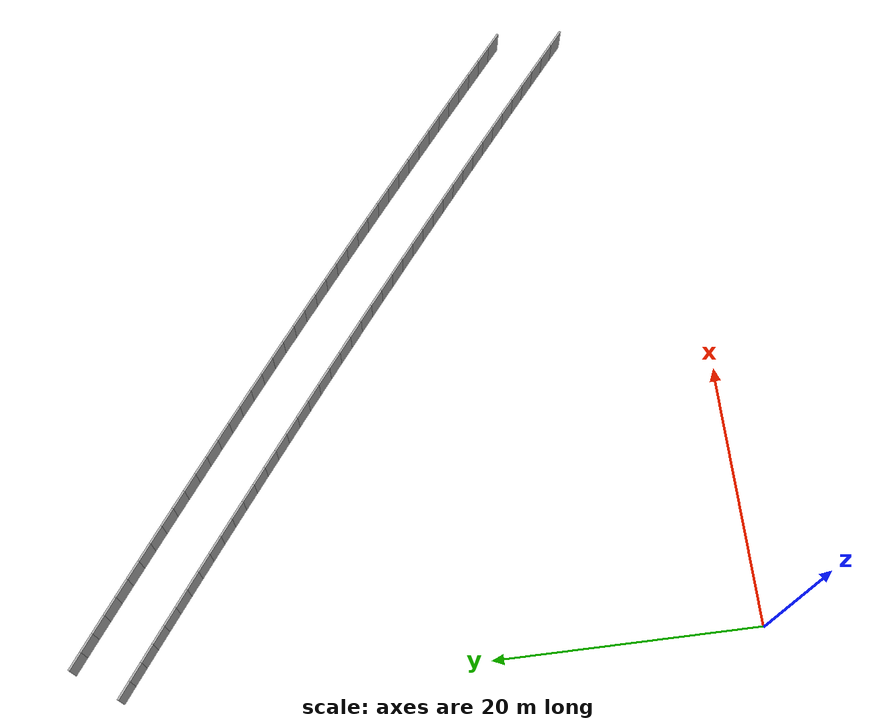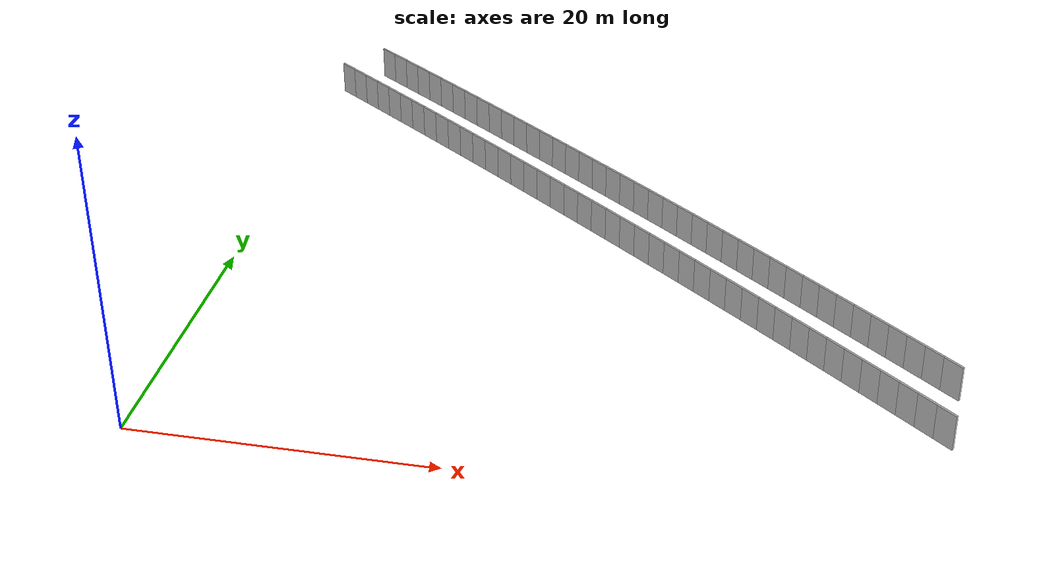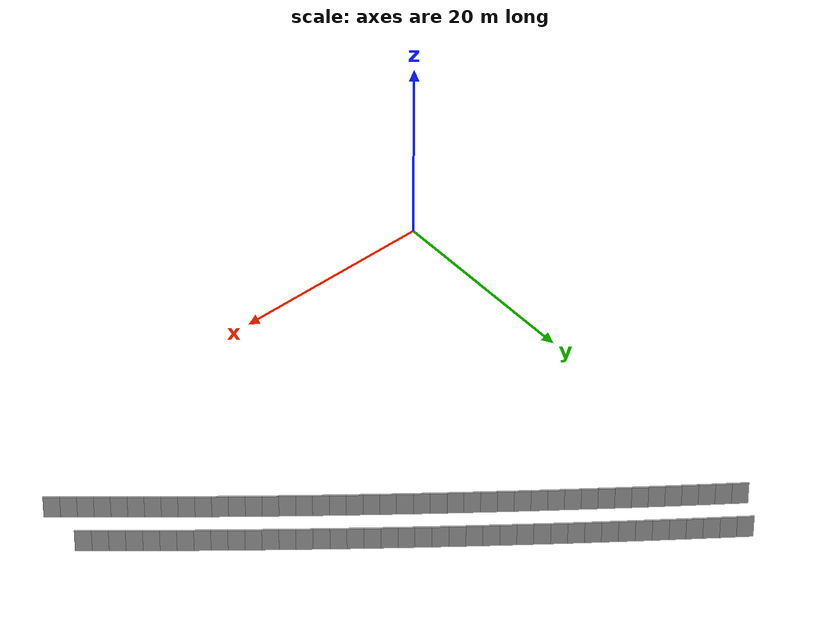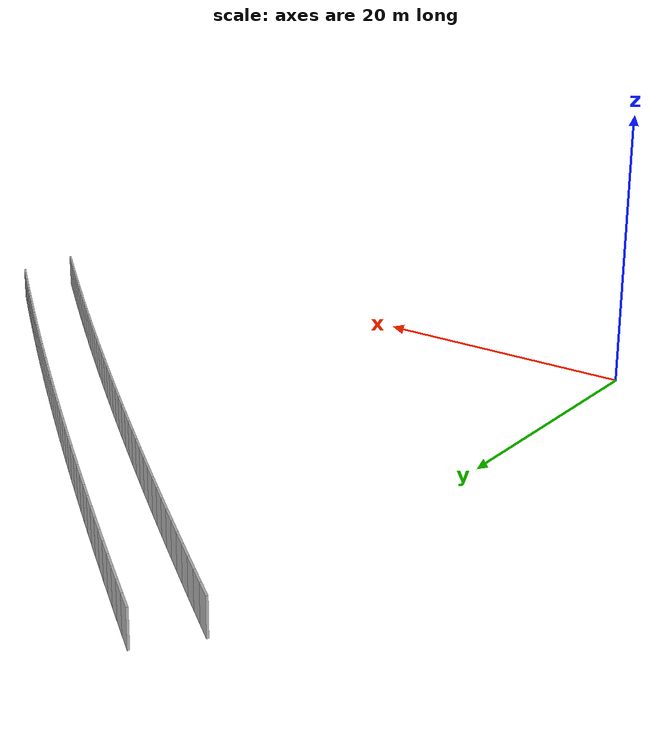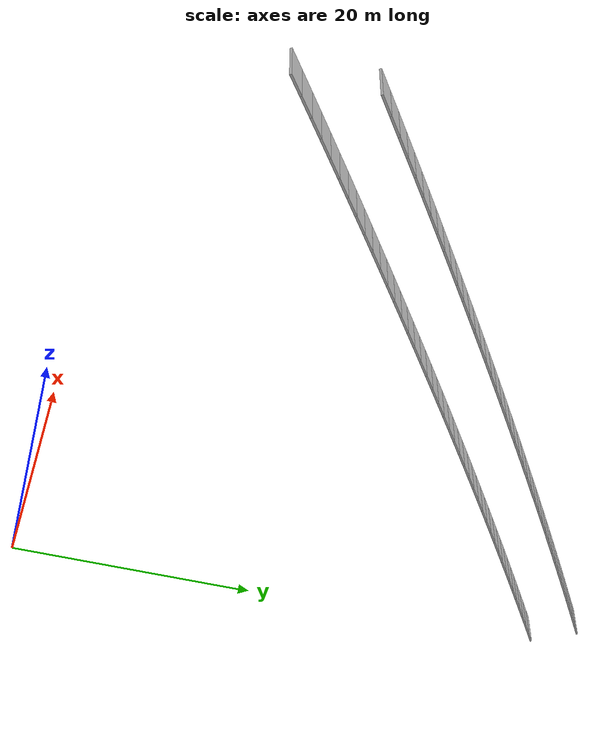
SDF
<?xml version="1.0" ?>
<sdf version="1.6">
  <model name="sps_3842">
    <pose frame="">0 0 0 0 -0 0</pose>
    <static>1</static>
    <self_collide>0</self_collide>
    <allow_auto_disable>0</allow_auto_disable>
    <link name="Wall10471">
      <kinematic>0</kinematic>
      <gravity>1</gravity>
      <self_collide>0</self_collide>
      <collision name="collision">
        <geometry>
          <box>
            <size>1.49663 0.15 2.5</size>
          </box>
        </geometry>
        <pose frame="">0 0 0 0 -0 0</pose>
      </collision>
      <visual name="visual">
        <geometry>
          <box>
            <size>1.49663 0.15 2.5</size>
          </box>
        </geometry>
        <pose frame="">0 0 0 0 -0 0</pose>
        <cast_shadows>1</cast_shadows>
        <transparency>0.0</transparency>
      </visual>
      <pose frame="">48.906 8.1053 1.25 0 -0 2.44067</pose>
    </link>
    <link name="Wall10472">
      <kinematic>0</kinematic>
      <gravity>1</gravity>
      <self_collide>0</self_collide>
      <collision name="collision">
        <geometry>
          <box>
            <size>1.49655 0.15 2.5</size>
          </box>
        </geometry>
        <pose frame="">0 0 0 0 -0 0</pose>
      </collision>
      <visual name="visual">
        <geometry>
          <box>
            <size>1.49655 0.15 2.5</size>
          </box>
        </geometry>
        <pose frame="">0 0 0 0 -0 0</pose>
        <cast_shadows>1</cast_shadows>
        <transparency>0.0</transparency>
      </visual>
      <pose frame="">47.7614 9.0695 1.25 0 -0 2.44238</pose>
    </link>
    <link name="Wall10473">
      <kinematic>0</kinematic>
      <gravity>1</gravity>
      <self_collide>0</self_collide>
      <collision name="collision">
        <geometry>
          <box>
            <size>1.49649 0.15 2.5</size>
          </box>
        </geometry>
        <pose frame="">0 0 0 0 -0 0</pose>
      </collision>
      <visual name="visual">
        <geometry>
          <box>
            <size>1.49649 0.15 2.5</size>
          </box>
        </geometry>
        <pose frame="">0 0 0 0 -0 0</pose>
        <cast_shadows>1</cast_shadows>
        <transparency>0.0</transparency>
      </visual>
      <pose frame="">46.6153 10.0318 1.25 0 -0 2.44395</pose>
    </link>
    <link name="Wall10474">
      <kinematic>0</kinematic>
      <gravity>1</gravity>
      <self_collide>0</self_collide>
      <collision name="collision">
        <geometry>
          <box>
            <size>1.49642 0.15 2.5</size>
          </box>
        </geometry>
        <pose frame="">0 0 0 0 -0 0</pose>
      </collision>
      <visual name="visual">
        <geometry>
          <box>
            <size>1.49642 0.15 2.5</size>
          </box>
        </geometry>
        <pose frame="">0 0 0 0 -0 0</pose>
        <cast_shadows>1</cast_shadows>
        <transparency>0.0</transparency>
      </visual>
      <pose frame="">45.4677 10.9923 1.25 0 -0 2.4454</pose>
    </link>
    <link name="Wall10475">
      <kinematic>0</kinematic>
      <gravity>1</gravity>
      <self_collide>0</self_collide>
      <collision name="collision">
        <geometry>
          <box>
            <size>1.49657 0.15 2.5</size>
          </box>
        </geometry>
        <pose frame="">0 0 0 0 -0 0</pose>
      </collision>
      <visual name="visual">
        <geometry>
          <box>
            <size>1.49657 0.15 2.5</size>
          </box>
        </geometry>
        <pose frame="">0 0 0 0 -0 0</pose>
        <cast_shadows>1</cast_shadows>
        <transparency>0.0</transparency>
      </visual>
      <pose frame="">44.3187 11.951 1.25 0 -0 2.44713</pose>
    </link>
    <link name="Wall10476">
      <kinematic>0</kinematic>
      <gravity>1</gravity>
      <self_collide>0</self_collide>
      <collision name="collision">
        <geometry>
          <box>
            <size>1.49657 0.15 2.5</size>
          </box>
        </geometry>
        <pose frame="">0 0 0 0 -0 0</pose>
      </collision>
      <visual name="visual">
        <geometry>
          <box>
            <size>1.49657 0.15 2.5</size>
          </box>
        </geometry>
        <pose frame="">0 0 0 0 -0 0</pose>
        <cast_shadows>1</cast_shadows>
        <transparency>0.0</transparency>
      </visual>
      <pose frame="">43.168 12.9079 1.25 0 -0 2.44867</pose>
    </link>
    <link name="Wall10477">
      <kinematic>0</kinematic>
      <gravity>1</gravity>
      <self_collide>0</self_collide>
      <collision name="collision">
        <geometry>
          <box>
            <size>1.49647 0.15 2.5</size>
          </box>
        </geometry>
        <pose frame="">0 0 0 0 -0 0</pose>
      </collision>
      <visual name="visual">
        <geometry>
          <box>
            <size>1.49647 0.15 2.5</size>
          </box>
        </geometry>
        <pose frame="">0 0 0 0 -0 0</pose>
        <cast_shadows>1</cast_shadows>
        <transparency>0.0</transparency>
      </visual>
      <pose frame="">42.0159 13.863 1.25 0 -0 2.45015</pose>
    </link>
    <link name="Wall10478">
      <kinematic>0</kinematic>
      <gravity>1</gravity>
      <self_collide>0</self_collide>
      <collision name="collision">
        <geometry>
          <box>
            <size>1.49657 0.15 2.5</size>
          </box>
        </geometry>
        <pose frame="">0 0 0 0 -0 0</pose>
      </collision>
      <visual name="visual">
        <geometry>
          <box>
            <size>1.49657 0.15 2.5</size>
          </box>
        </geometry>
        <pose frame="">0 0 0 0 -0 0</pose>
        <cast_shadows>1</cast_shadows>
        <transparency>0.0</transparency>
      </visual>
      <pose frame="">40.8623 14.8163 1.25 0 -0 2.45179</pose>
    </link>
    <link name="Wall10479">
      <kinematic>0</kinematic>
      <gravity>1</gravity>
      <self_collide>0</self_collide>
      <collision name="collision">
        <geometry>
          <box>
            <size>1.49653 0.15 2.5</size>
          </box>
        </geometry>
        <pose frame="">0 0 0 0 -0 0</pose>
      </collision>
      <visual name="visual">
        <geometry>
          <box>
            <size>1.49653 0.15 2.5</size>
          </box>
        </geometry>
        <pose frame="">0 0 0 0 -0 0</pose>
        <cast_shadows>1</cast_shadows>
        <transparency>0.0</transparency>
      </visual>
      <pose frame="">39.7071 15.7678 1.25 0 -0 2.4533</pose>
    </link>
    <link name="Wall10480">
      <kinematic>0</kinematic>
      <gravity>1</gravity>
      <self_collide>0</self_collide>
      <collision name="collision">
        <geometry>
          <box>
            <size>1.49655 0.15 2.5</size>
          </box>
        </geometry>
        <pose frame="">0 0 0 0 -0 0</pose>
      </collision>
      <visual name="visual">
        <geometry>
          <box>
            <size>1.49655 0.15 2.5</size>
          </box>
        </geometry>
        <pose frame="">0 0 0 0 -0 0</pose>
        <cast_shadows>1</cast_shadows>
        <transparency>0.0</transparency>
      </visual>
      <pose frame="">38.5506 16.7175 1.25 0 -0 2.4549</pose>
    </link>
    <link name="Wall10481">
      <kinematic>0</kinematic>
      <gravity>1</gravity>
      <self_collide>0</self_collide>
      <collision name="collision">
        <geometry>
          <box>
            <size>1.49641 0.15 2.5</size>
          </box>
        </geometry>
        <pose frame="">0 0 0 0 -0 0</pose>
      </collision>
      <visual name="visual">
        <geometry>
          <box>
            <size>1.49641 0.15 2.5</size>
          </box>
        </geometry>
        <pose frame="">0 0 0 0 -0 0</pose>
        <cast_shadows>1</cast_shadows>
        <transparency>0.0</transparency>
      </visual>
      <pose frame="">37.3925 17.6653 1.25 0 -0 2.45656</pose>
    </link>
    <link name="Wall10482">
      <kinematic>0</kinematic>
      <gravity>1</gravity>
      <self_collide>0</self_collide>
      <collision name="collision">
        <geometry>
          <box>
            <size>1.49652 0.15 2.5</size>
          </box>
        </geometry>
        <pose frame="">0 0 0 0 -0 0</pose>
      </collision>
      <visual name="visual">
        <geometry>
          <box>
            <size>1.49652 0.15 2.5</size>
          </box>
        </geometry>
        <pose frame="">0 0 0 0 -0 0</pose>
        <cast_shadows>1</cast_shadows>
        <transparency>0.0</transparency>
      </visual>
      <pose frame="">36.2329 18.6112 1.25 0 -0 2.45814</pose>
    </link>
    <link name="Wall10483">
      <kinematic>0</kinematic>
      <gravity>1</gravity>
      <self_collide>0</self_collide>
      <collision name="collision">
        <geometry>
          <box>
            <size>1.49659 0.15 2.5</size>
          </box>
        </geometry>
        <pose frame="">0 0 0 0 -0 0</pose>
      </collision>
      <visual name="visual">
        <geometry>
          <box>
            <size>1.49659 0.15 2.5</size>
          </box>
        </geometry>
        <pose frame="">0 0 0 0 -0 0</pose>
        <cast_shadows>1</cast_shadows>
        <transparency>0.0</transparency>
      </visual>
      <pose frame="">35.0717 19.5553 1.25 0 -0 2.45976</pose>
    </link>
    <link name="Wall10484">
      <kinematic>0</kinematic>
      <gravity>1</gravity>
      <self_collide>0</self_collide>
      <collision name="collision">
        <geometry>
          <box>
            <size>1.4965 0.15 2.5</size>
          </box>
        </geometry>
        <pose frame="">0 0 0 0 -0 0</pose>
      </collision>
      <visual name="visual">
        <geometry>
          <box>
            <size>1.4965 0.15 2.5</size>
          </box>
        </geometry>
        <pose frame="">0 0 0 0 -0 0</pose>
        <cast_shadows>1</cast_shadows>
        <transparency>0.0</transparency>
      </visual>
      <pose frame="">33.909 20.4975 1.25 0 -0 2.46139</pose>
    </link>
    <link name="Wall10485">
      <kinematic>0</kinematic>
      <gravity>1</gravity>
      <self_collide>0</self_collide>
      <collision name="collision">
        <geometry>
          <box>
            <size>1.49651 0.15 2.5</size>
          </box>
        </geometry>
        <pose frame="">0 0 0 0 -0 0</pose>
      </collision>
      <visual name="visual">
        <geometry>
          <box>
            <size>1.49651 0.15 2.5</size>
          </box>
        </geometry>
        <pose frame="">0 0 0 0 -0 0</pose>
        <cast_shadows>1</cast_shadows>
        <transparency>0.0</transparency>
      </visual>
      <pose frame="">32.7448 21.4379 1.25 0 -0 2.46281</pose>
    </link>
    <link name="Wall10486">
      <kinematic>0</kinematic>
      <gravity>1</gravity>
      <self_collide>0</self_collide>
      <collision name="collision">
        <geometry>
          <box>
            <size>1.49665 0.15 2.5</size>
          </box>
        </geometry>
        <pose frame="">0 0 0 0 -0 0</pose>
      </collision>
      <visual name="visual">
        <geometry>
          <box>
            <size>1.49665 0.15 2.5</size>
          </box>
        </geometry>
        <pose frame="">0 0 0 0 -0 0</pose>
        <cast_shadows>1</cast_shadows>
        <transparency>0.0</transparency>
      </visual>
      <pose frame="">31.5793 22.3767 1.25 0 -0 2.4642</pose>
    </link>
    <link name="Wall10487">
      <kinematic>0</kinematic>
      <gravity>1</gravity>
      <self_collide>0</self_collide>
      <collision name="collision">
        <geometry>
          <box>
            <size>1.49632 0.15 2.5</size>
          </box>
        </geometry>
        <pose frame="">0 0 0 0 -0 0</pose>
      </collision>
      <visual name="visual">
        <geometry>
          <box>
            <size>1.49632 0.15 2.5</size>
          </box>
        </geometry>
        <pose frame="">0 0 0 0 -0 0</pose>
        <cast_shadows>1</cast_shadows>
        <transparency>0.0</transparency>
      </visual>
      <pose frame="">30.4123 23.3135 1.25 0 -0 2.46616</pose>
    </link>
    <link name="Wall10488">
      <kinematic>0</kinematic>
      <gravity>1</gravity>
      <self_collide>0</self_collide>
      <collision name="collision">
        <geometry>
          <box>
            <size>1.49661 0.15 2.5</size>
          </box>
        </geometry>
        <pose frame="">0 0 0 0 -0 0</pose>
      </collision>
      <visual name="visual">
        <geometry>
          <box>
            <size>1.49661 0.15 2.5</size>
          </box>
        </geometry>
        <pose frame="">0 0 0 0 -0 0</pose>
        <cast_shadows>1</cast_shadows>
        <transparency>0.0</transparency>
      </visual>
      <pose frame="">29.2438 24.2483 1.25 0 -0 2.46762</pose>
    </link>
    <link name="Wall10489">
      <kinematic>0</kinematic>
      <gravity>1</gravity>
      <self_collide>0</self_collide>
      <collision name="collision">
        <geometry>
          <box>
            <size>1.49661 0.15 2.5</size>
          </box>
        </geometry>
        <pose frame="">0 0 0 0 -0 0</pose>
      </collision>
      <visual name="visual">
        <geometry>
          <box>
            <size>1.49661 0.15 2.5</size>
          </box>
        </geometry>
        <pose frame="">0 0 0 0 -0 0</pose>
        <cast_shadows>1</cast_shadows>
        <transparency>0.0</transparency>
      </visual>
      <pose frame="">28.0737 25.1814 1.25 0 -0 2.46919</pose>
    </link>
    <link name="Wall10490">
      <kinematic>0</kinematic>
      <gravity>1</gravity>
      <self_collide>0</self_collide>
      <collision name="collision">
        <geometry>
          <box>
            <size>1.4963 0.15 2.5</size>
          </box>
        </geometry>
        <pose frame="">0 0 0 0 -0 0</pose>
      </collision>
      <visual name="visual">
        <geometry>
          <box>
            <size>1.4963 0.15 2.5</size>
          </box>
        </geometry>
        <pose frame="">0 0 0 0 -0 0</pose>
        <cast_shadows>1</cast_shadows>
        <transparency>0.0</transparency>
      </visual>
      <pose frame="">26.9022 26.1126 1.25 0 -0 2.47069</pose>
    </link>
    <link name="Wall10491">
      <kinematic>0</kinematic>
      <gravity>1</gravity>
      <self_collide>0</self_collide>
      <collision name="collision">
        <geometry>
          <box>
            <size>1.49655 0.15 2.5</size>
          </box>
        </geometry>
        <pose frame="">0 0 0 0 -0 0</pose>
      </collision>
      <visual name="visual">
        <geometry>
          <box>
            <size>1.49655 0.15 2.5</size>
          </box>
        </geometry>
        <pose frame="">0 0 0 0 -0 0</pose>
        <cast_shadows>1</cast_shadows>
        <transparency>0.0</transparency>
      </visual>
      <pose frame="">25.7294 27.0419 1.25 0 -0 2.47239</pose>
    </link>
    <link name="Wall10492">
      <kinematic>0</kinematic>
      <gravity>1</gravity>
      <self_collide>0</self_collide>
      <collision name="collision">
        <geometry>
          <box>
            <size>1.4966 0.15 2.5</size>
          </box>
        </geometry>
        <pose frame="">0 0 0 0 -0 0</pose>
      </collision>
      <visual name="visual">
        <geometry>
          <box>
            <size>1.4966 0.15 2.5</size>
          </box>
        </geometry>
        <pose frame="">0 0 0 0 -0 0</pose>
        <cast_shadows>1</cast_shadows>
        <transparency>0.0</transparency>
      </visual>
      <pose frame="">24.5548 27.9693 1.25 0 -0 2.47413</pose>
    </link>
    <link name="Wall10493">
      <kinematic>0</kinematic>
      <gravity>1</gravity>
      <self_collide>0</self_collide>
      <collision name="collision">
        <geometry>
          <box>
            <size>1.49642 0.15 2.5</size>
          </box>
        </geometry>
        <pose frame="">0 0 0 0 -0 0</pose>
      </collision>
      <visual name="visual">
        <geometry>
          <box>
            <size>1.49642 0.15 2.5</size>
          </box>
        </geometry>
        <pose frame="">0 0 0 0 -0 0</pose>
        <cast_shadows>1</cast_shadows>
        <transparency>0.0</transparency>
      </visual>
      <pose frame="">23.3787 28.8948 1.25 0 -0 2.47559</pose>
    </link>
    <link name="Wall10494">
      <kinematic>0</kinematic>
      <gravity>1</gravity>
      <self_collide>0</self_collide>
      <collision name="collision">
        <geometry>
          <box>
            <size>1.49657 0.15 2.5</size>
          </box>
        </geometry>
        <pose frame="">0 0 0 0 -0 0</pose>
      </collision>
      <visual name="visual">
        <geometry>
          <box>
            <size>1.49657 0.15 2.5</size>
          </box>
        </geometry>
        <pose frame="">0 0 0 0 -0 0</pose>
        <cast_shadows>1</cast_shadows>
        <transparency>0.0</transparency>
      </visual>
      <pose frame="">22.2013 29.8185 1.25 0 -0 2.47712</pose>
    </link>
    <link name="Wall10495">
      <kinematic>0</kinematic>
      <gravity>1</gravity>
      <self_collide>0</self_collide>
      <collision name="collision">
        <geometry>
          <box>
            <size>1.49656 0.15 2.5</size>
          </box>
        </geometry>
        <pose frame="">0 0 0 0 -0 0</pose>
      </collision>
      <visual name="visual">
        <geometry>
          <box>
            <size>1.49656 0.15 2.5</size>
          </box>
        </geometry>
        <pose frame="">0 0 0 0 -0 0</pose>
        <cast_shadows>1</cast_shadows>
        <transparency>0.0</transparency>
      </visual>
      <pose frame="">21.0225 30.7404 1.25 0 -0 2.47872</pose>
    </link>
    <link name="Wall10496">
      <kinematic>0</kinematic>
      <gravity>1</gravity>
      <self_collide>0</self_collide>
      <collision name="collision">
        <geometry>
          <box>
            <size>1.49661 0.15 2.5</size>
          </box>
        </geometry>
        <pose frame="">0 0 0 0 -0 0</pose>
      </collision>
      <visual name="visual">
        <geometry>
          <box>
            <size>1.49661 0.15 2.5</size>
          </box>
        </geometry>
        <pose frame="">0 0 0 0 -0 0</pose>
        <cast_shadows>1</cast_shadows>
        <transparency>0.0</transparency>
      </visual>
      <pose frame="">19.842 31.6604 1.25 0 -0 2.4804</pose>
    </link>
    <link name="Wall10497">
      <kinematic>0</kinematic>
      <gravity>1</gravity>
      <self_collide>0</self_collide>
      <collision name="collision">
        <geometry>
          <box>
            <size>1.4964 0.15 2.5</size>
          </box>
        </geometry>
        <pose frame="">0 0 0 0 -0 0</pose>
      </collision>
      <visual name="visual">
        <geometry>
          <box>
            <size>1.4964 0.15 2.5</size>
          </box>
        </geometry>
        <pose frame="">0 0 0 0 -0 0</pose>
        <cast_shadows>1</cast_shadows>
        <transparency>0.0</transparency>
      </visual>
      <pose frame="">18.6602 32.5785 1.25 0 -0 2.48184</pose>
    </link>
    <link name="Wall10498">
      <kinematic>0</kinematic>
      <gravity>1</gravity>
      <self_collide>0</self_collide>
      <collision name="collision">
        <geometry>
          <box>
            <size>1.49651 0.15 2.5</size>
          </box>
        </geometry>
        <pose frame="">0 0 0 0 -0 0</pose>
      </collision>
      <visual name="visual">
        <geometry>
          <box>
            <size>1.49651 0.15 2.5</size>
          </box>
        </geometry>
        <pose frame="">0 0 0 0 -0 0</pose>
        <cast_shadows>1</cast_shadows>
        <transparency>0.0</transparency>
      </visual>
      <pose frame="">17.477 33.4947 1.25 0 -0 2.48355</pose>
    </link>
    <link name="Wall10499">
      <kinematic>0</kinematic>
      <gravity>1</gravity>
      <self_collide>0</self_collide>
      <collision name="collision">
        <geometry>
          <box>
            <size>1.49645 0.15 2.5</size>
          </box>
        </geometry>
        <pose frame="">0 0 0 0 -0 0</pose>
      </collision>
      <visual name="visual">
        <geometry>
          <box>
            <size>1.49645 0.15 2.5</size>
          </box>
        </geometry>
        <pose frame="">0 0 0 0 -0 0</pose>
        <cast_shadows>1</cast_shadows>
        <transparency>0.0</transparency>
      </visual>
      <pose frame="">16.2924 34.409 1.25 0 -0 2.48506</pose>
    </link>
    <link name="Wall10500">
      <kinematic>0</kinematic>
      <gravity>1</gravity>
      <self_collide>0</self_collide>
      <collision name="collision">
        <geometry>
          <box>
            <size>1.49653 0.15 2.5</size>
          </box>
        </geometry>
        <pose frame="">0 0 0 0 -0 0</pose>
      </collision>
      <visual name="visual">
        <geometry>
          <box>
            <size>1.49653 0.15 2.5</size>
          </box>
        </geometry>
        <pose frame="">0 0 0 0 -0 0</pose>
        <cast_shadows>1</cast_shadows>
        <transparency>0.0</transparency>
      </visual>
      <pose frame="">15.1063 35.3215 1.25 0 -0 2.4866</pose>
    </link>
    <link name="Wall10501">
      <kinematic>0</kinematic>
      <gravity>1</gravity>
      <self_collide>0</self_collide>
      <collision name="collision">
        <geometry>
          <box>
            <size>1.49663 0.15 2.5</size>
          </box>
        </geometry>
        <pose frame="">0 0 0 0 -0 0</pose>
      </collision>
      <visual name="visual">
        <geometry>
          <box>
            <size>1.49663 0.15 2.5</size>
          </box>
        </geometry>
        <pose frame="">0 0 0 0 -0 0</pose>
        <cast_shadows>1</cast_shadows>
        <transparency>0.0</transparency>
      </visual>
      <pose frame="">13.9187 36.2322 1.25 0 -0 2.48819</pose>
    </link>
    <link name="Wall10502">
      <kinematic>0</kinematic>
      <gravity>1</gravity>
      <self_collide>0</self_collide>
      <collision name="collision">
        <geometry>
          <box>
            <size>1.49646 0.15 2.5</size>
          </box>
        </geometry>
        <pose frame="">0 0 0 0 -0 0</pose>
      </collision>
      <visual name="visual">
        <geometry>
          <box>
            <size>1.49646 0.15 2.5</size>
          </box>
        </geometry>
        <pose frame="">0 0 0 0 -0 0</pose>
        <cast_shadows>1</cast_shadows>
        <transparency>0.0</transparency>
      </visual>
      <pose frame="">12.7296 37.1409 1.25 0 -0 2.48995</pose>
    </link>
    <link name="Wall10503">
      <kinematic>0</kinematic>
      <gravity>1</gravity>
      <self_collide>0</self_collide>
      <collision name="collision">
        <geometry>
          <box>
            <size>1.49662 0.15 2.5</size>
          </box>
        </geometry>
        <pose frame="">0 0 0 0 -0 0</pose>
      </collision>
      <visual name="visual">
        <geometry>
          <box>
            <size>1.49662 0.15 2.5</size>
          </box>
        </geometry>
        <pose frame="">0 0 0 0 -0 0</pose>
        <cast_shadows>1</cast_shadows>
        <transparency>0.0</transparency>
      </visual>
      <pose frame="">11.5391 38.0477 1.25 0 -0 2.49136</pose>
    </link>
    <link name="Wall10504">
      <kinematic>0</kinematic>
      <gravity>1</gravity>
      <self_collide>0</self_collide>
      <collision name="collision">
        <geometry>
          <box>
            <size>1.49636 0.15 2.5</size>
          </box>
        </geometry>
        <pose frame="">0 0 0 0 -0 0</pose>
      </collision>
      <visual name="visual">
        <geometry>
          <box>
            <size>1.49636 0.15 2.5</size>
          </box>
        </geometry>
        <pose frame="">0 0 0 0 -0 0</pose>
        <cast_shadows>1</cast_shadows>
        <transparency>0.0</transparency>
      </visual>
      <pose frame="">10.3472 38.9526 1.25 0 -0 2.49307</pose>
    </link>
    <link name="Wall10505">
      <kinematic>0</kinematic>
      <gravity>1</gravity>
      <self_collide>0</self_collide>
      <collision name="collision">
        <geometry>
          <box>
            <size>1.49664 0.15 2.5</size>
          </box>
        </geometry>
        <pose frame="">0 0 0 0 -0 0</pose>
      </collision>
      <visual name="visual">
        <geometry>
          <box>
            <size>1.49664 0.15 2.5</size>
          </box>
        </geometry>
        <pose frame="">0 0 0 0 -0 0</pose>
        <cast_shadows>1</cast_shadows>
        <transparency>0.0</transparency>
      </visual>
      <pose frame="">9.15395 39.8558 1.25 0 -0 2.49424</pose>
    </link>
    <link name="Wall10506">
      <kinematic>0</kinematic>
      <gravity>1</gravity>
      <self_collide>0</self_collide>
      <collision name="collision">
        <geometry>
          <box>
            <size>1.49643 0.15 2.5</size>
          </box>
        </geometry>
        <pose frame="">0 0 0 0 -0 0</pose>
      </collision>
      <visual name="visual">
        <geometry>
          <box>
            <size>1.49643 0.15 2.5</size>
          </box>
        </geometry>
        <pose frame="">0 0 0 0 -0 0</pose>
        <cast_shadows>1</cast_shadows>
        <transparency>0.0</transparency>
      </visual>
      <pose frame="">7.95934 40.7572 1.25 0 -0 2.49613</pose>
    </link>
    <link name="Wall10507">
      <kinematic>0</kinematic>
      <gravity>1</gravity>
      <self_collide>0</self_collide>
      <collision name="collision">
        <geometry>
          <box>
            <size>1.49664 0.15 2.5</size>
          </box>
        </geometry>
        <pose frame="">0 0 0 0 -0 0</pose>
      </collision>
      <visual name="visual">
        <geometry>
          <box>
            <size>1.49664 0.15 2.5</size>
          </box>
        </geometry>
        <pose frame="">0 0 0 0 -0 0</pose>
        <cast_shadows>1</cast_shadows>
        <transparency>0.0</transparency>
      </visual>
      <pose frame="">6.76314 41.6565 1.25 0 -0 2.49777</pose>
    </link>
    <link name="Wall10508">
      <kinematic>0</kinematic>
      <gravity>1</gravity>
      <self_collide>0</self_collide>
      <collision name="collision">
        <geometry>
          <box>
            <size>1.4964 0.15 2.5</size>
          </box>
        </geometry>
        <pose frame="">0 0 0 0 -0 0</pose>
      </collision>
      <visual name="visual">
        <geometry>
          <box>
            <size>1.4964 0.15 2.5</size>
          </box>
        </geometry>
        <pose frame="">0 0 0 0 -0 0</pose>
        <cast_shadows>1</cast_shadows>
        <transparency>0.0</transparency>
      </visual>
      <pose frame="">5.56554 42.5539 1.25 0 -0 2.49927</pose>
    </link>
    <link name="Wall10509">
      <kinematic>0</kinematic>
      <gravity>1</gravity>
      <self_collide>0</self_collide>
      <collision name="collision">
        <geometry>
          <box>
            <size>1.49647 0.15 2.5</size>
          </box>
        </geometry>
        <pose frame="">0 0 0 0 -0 0</pose>
      </collision>
      <visual name="visual">
        <geometry>
          <box>
            <size>1.49647 0.15 2.5</size>
          </box>
        </geometry>
        <pose frame="">0 0 0 0 -0 0</pose>
        <cast_shadows>1</cast_shadows>
        <transparency>0.0</transparency>
      </visual>
      <pose frame="">4.36657 43.4493 1.25 0 -0 2.50099</pose>
    </link>
    <link name="Wall10510">
      <kinematic>0</kinematic>
      <gravity>1</gravity>
      <self_collide>0</self_collide>
      <collision name="collision">
        <geometry>
          <box>
            <size>1.49655 0.15 2.5</size>
          </box>
        </geometry>
        <pose frame="">0 0 0 0 -0 0</pose>
      </collision>
      <visual name="visual">
        <geometry>
          <box>
            <size>1.49655 0.15 2.5</size>
          </box>
        </geometry>
        <pose frame="">0 0 0 0 -0 0</pose>
        <cast_shadows>1</cast_shadows>
        <transparency>0.0</transparency>
      </visual>
      <pose frame="">3.16607 44.3428 1.25 0 -0 2.50255</pose>
    </link>
    <link name="Wall10511">
      <kinematic>0</kinematic>
      <gravity>1</gravity>
      <self_collide>0</self_collide>
      <collision name="collision">
        <geometry>
          <box>
            <size>1.49657 0.15 2.5</size>
          </box>
        </geometry>
        <pose frame="">0 0 0 0 -0 0</pose>
      </collision>
      <visual name="visual">
        <geometry>
          <box>
            <size>1.49657 0.15 2.5</size>
          </box>
        </geometry>
        <pose frame="">0 0 0 0 -0 0</pose>
        <cast_shadows>1</cast_shadows>
        <transparency>0.0</transparency>
      </visual>
      <pose frame="">1.96416 45.2345 1.25 0 -0 2.50404</pose>
    </link>
    <link name="Wall10512">
      <kinematic>0</kinematic>
      <gravity>1</gravity>
      <self_collide>0</self_collide>
      <collision name="collision">
        <geometry>
          <box>
            <size>1.49655 0.15 2.5</size>
          </box>
        </geometry>
        <pose frame="">0 0 0 0 -0 0</pose>
      </collision>
      <visual name="visual">
        <geometry>
          <box>
            <size>1.49655 0.15 2.5</size>
          </box>
        </geometry>
        <pose frame="">0 0 0 0 -0 0</pose>
        <cast_shadows>1</cast_shadows>
        <transparency>0.0</transparency>
      </visual>
      <pose frame="">0.760856 46.1243 1.25 0 -0 2.5057</pose>
    </link>
    <link name="Wall11070">
      <kinematic>0</kinematic>
      <gravity>1</gravity>
      <self_collide>0</self_collide>
      <collision name="collision">
        <geometry>
          <box>
            <size>1.50303 0.15 2.5</size>
          </box>
        </geometry>
        <pose frame="">0 0 0 0 -0 0</pose>
      </collision>
      <visual name="visual">
        <geometry>
          <box>
            <size>1.50303 0.15 2.5</size>
          </box>
        </geometry>
        <pose frame="">0 0 0 0 -0 0</pose>
        <cast_shadows>1</cast_shadows>
        <transparency>0.0</transparency>
      </visual>
      <pose frame="">49.2748 13.2047 1.25 0 -0 2.44389</pose>
    </link>
    <link name="Wall11071">
      <kinematic>0</kinematic>
      <gravity>1</gravity>
      <self_collide>0</self_collide>
      <collision name="collision">
        <geometry>
          <box>
            <size>1.50311 0.15 2.5</size>
          </box>
        </geometry>
        <pose frame="">0 0 0 0 -0 0</pose>
      </collision>
      <visual name="visual">
        <geometry>
          <box>
            <size>1.50311 0.15 2.5</size>
          </box>
        </geometry>
        <pose frame="">0 0 0 0 -0 0</pose>
        <cast_shadows>1</cast_shadows>
        <transparency>0.0</transparency>
      </visual>
      <pose frame="">48.1222 14.1694 1.25 0 -0 2.44552</pose>
    </link>
    <link name="Wall11072">
      <kinematic>0</kinematic>
      <gravity>1</gravity>
      <self_collide>0</self_collide>
      <collision name="collision">
        <geometry>
          <box>
            <size>1.50297 0.15 2.5</size>
          </box>
        </geometry>
        <pose frame="">0 0 0 0 -0 0</pose>
      </collision>
      <visual name="visual">
        <geometry>
          <box>
            <size>1.50297 0.15 2.5</size>
          </box>
        </geometry>
        <pose frame="">0 0 0 0 -0 0</pose>
        <cast_shadows>1</cast_shadows>
        <transparency>0.0</transparency>
      </visual>
      <pose frame="">46.968 15.1323 1.25 0 -0 2.44703</pose>
    </link>
    <link name="Wall11073">
      <kinematic>0</kinematic>
      <gravity>1</gravity>
      <self_collide>0</self_collide>
      <collision name="collision">
        <geometry>
          <box>
            <size>1.50318 0.15 2.5</size>
          </box>
        </geometry>
        <pose frame="">0 0 0 0 -0 0</pose>
      </collision>
      <visual name="visual">
        <geometry>
          <box>
            <size>1.50318 0.15 2.5</size>
          </box>
        </geometry>
        <pose frame="">0 0 0 0 -0 0</pose>
        <cast_shadows>1</cast_shadows>
        <transparency>0.0</transparency>
      </visual>
      <pose frame="">45.8125 16.0935 1.25 0 -0 2.44852</pose>
    </link>
    <link name="Wall11074">
      <kinematic>0</kinematic>
      <gravity>1</gravity>
      <self_collide>0</self_collide>
      <collision name="collision">
        <geometry>
          <box>
            <size>1.5029 0.15 2.5</size>
          </box>
        </geometry>
        <pose frame="">0 0 0 0 -0 0</pose>
      </collision>
      <visual name="visual">
        <geometry>
          <box>
            <size>1.5029 0.15 2.5</size>
          </box>
        </geometry>
        <pose frame="">0 0 0 0 -0 0</pose>
        <cast_shadows>1</cast_shadows>
        <transparency>0.0</transparency>
      </visual>
      <pose frame="">44.6554 17.0528 1.25 0 -0 2.45027</pose>
    </link>
    <link name="Wall11075">
      <kinematic>0</kinematic>
      <gravity>1</gravity>
      <self_collide>0</self_collide>
      <collision name="collision">
        <geometry>
          <box>
            <size>1.50326 0.15 2.5</size>
          </box>
        </geometry>
        <pose frame="">0 0 0 0 -0 0</pose>
      </collision>
      <visual name="visual">
        <geometry>
          <box>
            <size>1.50326 0.15 2.5</size>
          </box>
        </geometry>
        <pose frame="">0 0 0 0 -0 0</pose>
        <cast_shadows>1</cast_shadows>
        <transparency>0.0</transparency>
      </visual>
      <pose frame="">43.4966 18.0102 1.25 0 -0 2.45183</pose>
    </link>
    <link name="Wall11076">
      <kinematic>0</kinematic>
      <gravity>1</gravity>
      <self_collide>0</self_collide>
      <collision name="collision">
        <geometry>
          <box>
            <size>1.50317 0.15 2.5</size>
          </box>
        </geometry>
        <pose frame="">0 0 0 0 -0 0</pose>
      </collision>
      <visual name="visual">
        <geometry>
          <box>
            <size>1.50317 0.15 2.5</size>
          </box>
        </geometry>
        <pose frame="">0 0 0 0 -0 0</pose>
        <cast_shadows>1</cast_shadows>
        <transparency>0.0</transparency>
      </visual>
      <pose frame="">42.3364 18.9659 1.25 0 -0 2.45331</pose>
    </link>
    <link name="Wall11077">
      <kinematic>0</kinematic>
      <gravity>1</gravity>
      <self_collide>0</self_collide>
      <collision name="collision">
        <geometry>
          <box>
            <size>1.50298 0.15 2.5</size>
          </box>
        </geometry>
        <pose frame="">0 0 0 0 -0 0</pose>
      </collision>
      <visual name="visual">
        <geometry>
          <box>
            <size>1.50298 0.15 2.5</size>
          </box>
        </geometry>
        <pose frame="">0 0 0 0 -0 0</pose>
        <cast_shadows>1</cast_shadows>
        <transparency>0.0</transparency>
      </visual>
      <pose frame="">41.1747 19.9197 1.25 0 -0 2.45499</pose>
    </link>
    <link name="Wall11078">
      <kinematic>0</kinematic>
      <gravity>1</gravity>
      <self_collide>0</self_collide>
      <collision name="collision">
        <geometry>
          <box>
            <size>1.50313 0.15 2.5</size>
          </box>
        </geometry>
        <pose frame="">0 0 0 0 -0 0</pose>
      </collision>
      <visual name="visual">
        <geometry>
          <box>
            <size>1.50313 0.15 2.5</size>
          </box>
        </geometry>
        <pose frame="">0 0 0 0 -0 0</pose>
        <cast_shadows>1</cast_shadows>
        <transparency>0.0</transparency>
      </visual>
      <pose frame="">40.0115 20.8716 1.25 0 -0 2.45654</pose>
    </link>
    <link name="Wall11079">
      <kinematic>0</kinematic>
      <gravity>1</gravity>
      <self_collide>0</self_collide>
      <collision name="collision">
        <geometry>
          <box>
            <size>1.50302 0.15 2.5</size>
          </box>
        </geometry>
        <pose frame="">0 0 0 0 -0 0</pose>
      </collision>
      <visual name="visual">
        <geometry>
          <box>
            <size>1.50302 0.15 2.5</size>
          </box>
        </geometry>
        <pose frame="">0 0 0 0 -0 0</pose>
        <cast_shadows>1</cast_shadows>
        <transparency>0.0</transparency>
      </visual>
      <pose frame="">38.8468 21.8217 1.25 0 -0 2.45811</pose>
    </link>
    <link name="Wall11080">
      <kinematic>0</kinematic>
      <gravity>1</gravity>
      <self_collide>0</self_collide>
      <collision name="collision">
        <geometry>
          <box>
            <size>1.50302 0.15 2.5</size>
          </box>
        </geometry>
        <pose frame="">0 0 0 0 -0 0</pose>
      </collision>
      <visual name="visual">
        <geometry>
          <box>
            <size>1.50302 0.15 2.5</size>
          </box>
        </geometry>
        <pose frame="">0 0 0 0 -0 0</pose>
        <cast_shadows>1</cast_shadows>
        <transparency>0.0</transparency>
      </visual>
      <pose frame="">37.6806 22.7699 1.25 0 -0 2.45978</pose>
    </link>
    <link name="Wall11081">
      <kinematic>0</kinematic>
      <gravity>1</gravity>
      <self_collide>0</self_collide>
      <collision name="collision">
        <geometry>
          <box>
            <size>1.503 0.15 2.5</size>
          </box>
        </geometry>
        <pose frame="">0 0 0 0 -0 0</pose>
      </collision>
      <visual name="visual">
        <geometry>
          <box>
            <size>1.503 0.15 2.5</size>
          </box>
        </geometry>
        <pose frame="">0 0 0 0 -0 0</pose>
        <cast_shadows>1</cast_shadows>
        <transparency>0.0</transparency>
      </visual>
      <pose frame="">36.5129 23.7162 1.25 0 -0 2.46128</pose>
    </link>
    <link name="Wall11082">
      <kinematic>0</kinematic>
      <gravity>1</gravity>
      <self_collide>0</self_collide>
      <collision name="collision">
        <geometry>
          <box>
            <size>1.50313 0.15 2.5</size>
          </box>
        </geometry>
        <pose frame="">0 0 0 0 -0 0</pose>
      </collision>
      <visual name="visual">
        <geometry>
          <box>
            <size>1.50313 0.15 2.5</size>
          </box>
        </geometry>
        <pose frame="">0 0 0 0 -0 0</pose>
        <cast_shadows>1</cast_shadows>
        <transparency>0.0</transparency>
      </visual>
      <pose frame="">35.3437 24.6607 1.25 0 -0 2.46292</pose>
    </link>
    <link name="Wall11083">
      <kinematic>0</kinematic>
      <gravity>1</gravity>
      <self_collide>0</self_collide>
      <collision name="collision">
        <geometry>
          <box>
            <size>1.50302 0.15 2.5</size>
          </box>
        </geometry>
        <pose frame="">0 0 0 0 -0 0</pose>
      </collision>
      <visual name="visual">
        <geometry>
          <box>
            <size>1.50302 0.15 2.5</size>
          </box>
        </geometry>
        <pose frame="">0 0 0 0 -0 0</pose>
        <cast_shadows>1</cast_shadows>
        <transparency>0.0</transparency>
      </visual>
      <pose frame="">34.1729 25.6034 1.25 0 -0 2.46443</pose>
    </link>
    <link name="Wall11084">
      <kinematic>0</kinematic>
      <gravity>1</gravity>
      <self_collide>0</self_collide>
      <collision name="collision">
        <geometry>
          <box>
            <size>1.50304 0.15 2.5</size>
          </box>
        </geometry>
        <pose frame="">0 0 0 0 -0 0</pose>
      </collision>
      <visual name="visual">
        <geometry>
          <box>
            <size>1.50304 0.15 2.5</size>
          </box>
        </geometry>
        <pose frame="">0 0 0 0 -0 0</pose>
        <cast_shadows>1</cast_shadows>
        <transparency>0.0</transparency>
      </visual>
      <pose frame="">33.0008 26.5442 1.25 0 -0 2.4661</pose>
    </link>
    <link name="Wall11085">
      <kinematic>0</kinematic>
      <gravity>1</gravity>
      <self_collide>0</self_collide>
      <collision name="collision">
        <geometry>
          <box>
            <size>1.50308 0.15 2.5</size>
          </box>
        </geometry>
        <pose frame="">0 0 0 0 -0 0</pose>
      </collision>
      <visual name="visual">
        <geometry>
          <box>
            <size>1.50308 0.15 2.5</size>
          </box>
        </geometry>
        <pose frame="">0 0 0 0 -0 0</pose>
        <cast_shadows>1</cast_shadows>
        <transparency>0.0</transparency>
      </visual>
      <pose frame="">31.8272 27.4833 1.25 0 -0 2.46737</pose>
    </link>
    <link name="Wall11086">
      <kinematic>0</kinematic>
      <gravity>1</gravity>
      <self_collide>0</self_collide>
      <collision name="collision">
        <geometry>
          <box>
            <size>1.50318 0.15 2.5</size>
          </box>
        </geometry>
        <pose frame="">0 0 0 0 -0 0</pose>
      </collision>
      <visual name="visual">
        <geometry>
          <box>
            <size>1.50318 0.15 2.5</size>
          </box>
        </geometry>
        <pose frame="">0 0 0 0 -0 0</pose>
        <cast_shadows>1</cast_shadows>
        <transparency>0.0</transparency>
      </visual>
      <pose frame="">30.6521 28.4206 1.25 0 -0 2.46924</pose>
    </link>
    <link name="Wall11087">
      <kinematic>0</kinematic>
      <gravity>1</gravity>
      <self_collide>0</self_collide>
      <collision name="collision">
        <geometry>
          <box>
            <size>1.50309 0.15 2.5</size>
          </box>
        </geometry>
        <pose frame="">0 0 0 0 -0 0</pose>
      </collision>
      <visual name="visual">
        <geometry>
          <box>
            <size>1.50309 0.15 2.5</size>
          </box>
        </geometry>
        <pose frame="">0 0 0 0 -0 0</pose>
        <cast_shadows>1</cast_shadows>
        <transparency>0.0</transparency>
      </visual>
      <pose frame="">29.4754 29.3559 1.25 0 -0 2.47075</pose>
    </link>
    <link name="Wall11088">
      <kinematic>0</kinematic>
      <gravity>1</gravity>
      <self_collide>0</self_collide>
      <collision name="collision">
        <geometry>
          <box>
            <size>1.50302 0.15 2.5</size>
          </box>
        </geometry>
        <pose frame="">0 0 0 0 -0 0</pose>
      </collision>
      <visual name="visual">
        <geometry>
          <box>
            <size>1.50302 0.15 2.5</size>
          </box>
        </geometry>
        <pose frame="">0 0 0 0 -0 0</pose>
        <cast_shadows>1</cast_shadows>
        <transparency>0.0</transparency>
      </visual>
      <pose frame="">28.2972 30.2892 1.25 0 -0 2.47258</pose>
    </link>
    <link name="Wall11089">
      <kinematic>0</kinematic>
      <gravity>1</gravity>
      <self_collide>0</self_collide>
      <collision name="collision">
        <geometry>
          <box>
            <size>1.50313 0.15 2.5</size>
          </box>
        </geometry>
        <pose frame="">0 0 0 0 -0 0</pose>
      </collision>
      <visual name="visual">
        <geometry>
          <box>
            <size>1.50313 0.15 2.5</size>
          </box>
        </geometry>
        <pose frame="">0 0 0 0 -0 0</pose>
        <cast_shadows>1</cast_shadows>
        <transparency>0.0</transparency>
      </visual>
      <pose frame="">27.1175 31.2206 1.25 0 -0 2.47399</pose>
    </link>
    <link name="Wall11090">
      <kinematic>0</kinematic>
      <gravity>1</gravity>
      <self_collide>0</self_collide>
      <collision name="collision">
        <geometry>
          <box>
            <size>1.50309 0.15 2.5</size>
          </box>
        </geometry>
        <pose frame="">0 0 0 0 -0 0</pose>
      </collision>
      <visual name="visual">
        <geometry>
          <box>
            <size>1.50309 0.15 2.5</size>
          </box>
        </geometry>
        <pose frame="">0 0 0 0 -0 0</pose>
        <cast_shadows>1</cast_shadows>
        <transparency>0.0</transparency>
      </visual>
      <pose frame="">25.9364 32.1503 1.25 0 -0 2.47546</pose>
    </link>
    <link name="Wall11091">
      <kinematic>0</kinematic>
      <gravity>1</gravity>
      <self_collide>0</self_collide>
      <collision name="collision">
        <geometry>
          <box>
            <size>1.503 0.15 2.5</size>
          </box>
        </geometry>
        <pose frame="">0 0 0 0 -0 0</pose>
      </collision>
      <visual name="visual">
        <geometry>
          <box>
            <size>1.503 0.15 2.5</size>
          </box>
        </geometry>
        <pose frame="">0 0 0 0 -0 0</pose>
        <cast_shadows>1</cast_shadows>
        <transparency>0.0</transparency>
      </visual>
      <pose frame="">24.7539 33.0781 1.25 0 -0 2.47712</pose>
    </link>
    <link name="Wall11092">
      <kinematic>0</kinematic>
      <gravity>1</gravity>
      <self_collide>0</self_collide>
      <collision name="collision">
        <geometry>
          <box>
            <size>1.50313 0.15 2.5</size>
          </box>
        </geometry>
        <pose frame="">0 0 0 0 -0 0</pose>
      </collision>
      <visual name="visual">
        <geometry>
          <box>
            <size>1.50313 0.15 2.5</size>
          </box>
        </geometry>
        <pose frame="">0 0 0 0 -0 0</pose>
        <cast_shadows>1</cast_shadows>
        <transparency>0.0</transparency>
      </visual>
      <pose frame="">23.5698 34.004 1.25 0 -0 2.47873</pose>
    </link>
    <link name="Wall11093">
      <kinematic>0</kinematic>
      <gravity>1</gravity>
      <self_collide>0</self_collide>
      <collision name="collision">
        <geometry>
          <box>
            <size>1.50295 0.15 2.5</size>
          </box>
        </geometry>
        <pose frame="">0 0 0 0 -0 0</pose>
      </collision>
      <visual name="visual">
        <geometry>
          <box>
            <size>1.50295 0.15 2.5</size>
          </box>
        </geometry>
        <pose frame="">0 0 0 0 -0 0</pose>
        <cast_shadows>1</cast_shadows>
        <transparency>0.0</transparency>
      </visual>
      <pose frame="">22.3844 34.928 1.25 0 -0 2.48034</pose>
    </link>
    <link name="Wall11094">
      <kinematic>0</kinematic>
      <gravity>1</gravity>
      <self_collide>0</self_collide>
      <collision name="collision">
        <geometry>
          <box>
            <size>1.50302 0.15 2.5</size>
          </box>
        </geometry>
        <pose frame="">0 0 0 0 -0 0</pose>
      </collision>
      <visual name="visual">
        <geometry>
          <box>
            <size>1.50302 0.15 2.5</size>
          </box>
        </geometry>
        <pose frame="">0 0 0 0 -0 0</pose>
        <cast_shadows>1</cast_shadows>
        <transparency>0.0</transparency>
      </visual>
      <pose frame="">21.1975 35.8501 1.25 0 -0 2.48186</pose>
    </link>
    <link name="Wall11095">
      <kinematic>0</kinematic>
      <gravity>1</gravity>
      <self_collide>0</self_collide>
      <collision name="collision">
        <geometry>
          <box>
            <size>1.50319 0.15 2.5</size>
          </box>
        </geometry>
        <pose frame="">0 0 0 0 -0 0</pose>
      </collision>
      <visual name="visual">
        <geometry>
          <box>
            <size>1.50319 0.15 2.5</size>
          </box>
        </geometry>
        <pose frame="">0 0 0 0 -0 0</pose>
        <cast_shadows>1</cast_shadows>
        <transparency>0.0</transparency>
      </visual>
      <pose frame="">20.0091 36.7704 1.25 0 -0 2.48344</pose>
    </link>
    <link name="Wall11096">
      <kinematic>0</kinematic>
      <gravity>1</gravity>
      <self_collide>0</self_collide>
      <collision name="collision">
        <geometry>
          <box>
            <size>1.50303 0.15 2.5</size>
          </box>
        </geometry>
        <pose frame="">0 0 0 0 -0 0</pose>
      </collision>
      <visual name="visual">
        <geometry>
          <box>
            <size>1.50303 0.15 2.5</size>
          </box>
        </geometry>
        <pose frame="">0 0 0 0 -0 0</pose>
        <cast_shadows>1</cast_shadows>
        <transparency>0.0</transparency>
      </visual>
      <pose frame="">18.8191 37.6888 1.25 0 -0 2.4851</pose>
    </link>
    <link name="Wall11097">
      <kinematic>0</kinematic>
      <gravity>1</gravity>
      <self_collide>0</self_collide>
      <collision name="collision">
        <geometry>
          <box>
            <size>1.5031 0.15 2.5</size>
          </box>
        </geometry>
        <pose frame="">0 0 0 0 -0 0</pose>
      </collision>
      <visual name="visual">
        <geometry>
          <box>
            <size>1.5031 0.15 2.5</size>
          </box>
        </geometry>
        <pose frame="">0 0 0 0 -0 0</pose>
        <cast_shadows>1</cast_shadows>
        <transparency>0.0</transparency>
      </visual>
      <pose frame="">17.6277 38.6052 1.25 0 -0 2.48678</pose>
    </link>
    <link name="Wall11098">
      <kinematic>0</kinematic>
      <gravity>1</gravity>
      <self_collide>0</self_collide>
      <collision name="collision">
        <geometry>
          <box>
            <size>1.50294 0.15 2.5</size>
          </box>
        </geometry>
        <pose frame="">0 0 0 0 -0 0</pose>
      </collision>
      <visual name="visual">
        <geometry>
          <box>
            <size>1.50294 0.15 2.5</size>
          </box>
        </geometry>
        <pose frame="">0 0 0 0 -0 0</pose>
        <cast_shadows>1</cast_shadows>
        <transparency>0.0</transparency>
      </visual>
      <pose frame="">16.435 39.5197 1.25 0 -0 2.48818</pose>
    </link>
    <link name="Wall11099">
      <kinematic>0</kinematic>
      <gravity>1</gravity>
      <self_collide>0</self_collide>
      <collision name="collision">
        <geometry>
          <box>
            <size>1.50314 0.15 2.5</size>
          </box>
        </geometry>
        <pose frame="">0 0 0 0 -0 0</pose>
      </collision>
      <visual name="visual">
        <geometry>
          <box>
            <size>1.50314 0.15 2.5</size>
          </box>
        </geometry>
        <pose frame="">0 0 0 0 -0 0</pose>
        <cast_shadows>1</cast_shadows>
        <transparency>0.0</transparency>
      </visual>
      <pose frame="">15.2408 40.4324 1.25 0 -0 2.48982</pose>
    </link>
    <link name="Wall11100">
      <kinematic>0</kinematic>
      <gravity>1</gravity>
      <self_collide>0</self_collide>
      <collision name="collision">
        <geometry>
          <box>
            <size>1.50315 0.15 2.5</size>
          </box>
        </geometry>
        <pose frame="">0 0 0 0 -0 0</pose>
      </collision>
      <visual name="visual">
        <geometry>
          <box>
            <size>1.50315 0.15 2.5</size>
          </box>
        </geometry>
        <pose frame="">0 0 0 0 -0 0</pose>
        <cast_shadows>1</cast_shadows>
        <transparency>0.0</transparency>
      </visual>
      <pose frame="">14.0451 41.3433 1.25 0 -0 2.49135</pose>
    </link>
    <link name="Wall11101">
      <kinematic>0</kinematic>
      <gravity>1</gravity>
      <self_collide>0</self_collide>
      <collision name="collision">
        <geometry>
          <box>
            <size>1.50308 0.15 2.5</size>
          </box>
        </geometry>
        <pose frame="">0 0 0 0 -0 0</pose>
      </collision>
      <visual name="visual">
        <geometry>
          <box>
            <size>1.50308 0.15 2.5</size>
          </box>
        </geometry>
        <pose frame="">0 0 0 0 -0 0</pose>
        <cast_shadows>1</cast_shadows>
        <transparency>0.0</transparency>
      </visual>
      <pose frame="">12.8479 42.2522 1.25 0 -0 2.49315</pose>
    </link>
    <link name="Wall11102">
      <kinematic>0</kinematic>
      <gravity>1</gravity>
      <self_collide>0</self_collide>
      <collision name="collision">
        <geometry>
          <box>
            <size>1.50328 0.15 2.5</size>
          </box>
        </geometry>
        <pose frame="">0 0 0 0 -0 0</pose>
      </collision>
      <visual name="visual">
        <geometry>
          <box>
            <size>1.50328 0.15 2.5</size>
          </box>
        </geometry>
        <pose frame="">0 0 0 0 -0 0</pose>
        <cast_shadows>1</cast_shadows>
        <transparency>0.0</transparency>
      </visual>
      <pose frame="">11.6492 43.1592 1.25 0 -0 2.49453</pose>
    </link>
    <link name="Wall11103">
      <kinematic>0</kinematic>
      <gravity>1</gravity>
      <self_collide>0</self_collide>
      <collision name="collision">
        <geometry>
          <box>
            <size>1.50301 0.15 2.5</size>
          </box>
        </geometry>
        <pose frame="">0 0 0 0 -0 0</pose>
      </collision>
      <visual name="visual">
        <geometry>
          <box>
            <size>1.50301 0.15 2.5</size>
          </box>
        </geometry>
        <pose frame="">0 0 0 0 -0 0</pose>
        <cast_shadows>1</cast_shadows>
        <transparency>0.0</transparency>
      </visual>
      <pose frame="">10.4491 44.0644 1.25 0 -0 2.49612</pose>
    </link>
    <link name="Wall11104">
      <kinematic>0</kinematic>
      <gravity>1</gravity>
      <self_collide>0</self_collide>
      <collision name="collision">
        <geometry>
          <box>
            <size>1.50313 0.15 2.5</size>
          </box>
        </geometry>
        <pose frame="">0 0 0 0 -0 0</pose>
      </collision>
      <visual name="visual">
        <geometry>
          <box>
            <size>1.50313 0.15 2.5</size>
          </box>
        </geometry>
        <pose frame="">0 0 0 0 -0 0</pose>
        <cast_shadows>1</cast_shadows>
        <transparency>0.0</transparency>
      </visual>
      <pose frame="">9.24786 44.9678 1.25 0 -0 2.4975</pose>
    </link>
    <link name="Wall11105">
      <kinematic>0</kinematic>
      <gravity>1</gravity>
      <self_collide>0</self_collide>
      <collision name="collision">
        <geometry>
          <box>
            <size>1.50313 0.15 2.5</size>
          </box>
        </geometry>
        <pose frame="">0 0 0 0 -0 0</pose>
      </collision>
      <visual name="visual">
        <geometry>
          <box>
            <size>1.50313 0.15 2.5</size>
          </box>
        </geometry>
        <pose frame="">0 0 0 0 -0 0</pose>
        <cast_shadows>1</cast_shadows>
        <transparency>0.0</transparency>
      </visual>
      <pose frame="">8.04507 45.8693 1.25 0 -0 2.49933</pose>
    </link>
    <link name="Wall11106">
      <kinematic>0</kinematic>
      <gravity>1</gravity>
      <self_collide>0</self_collide>
      <collision name="collision">
        <geometry>
          <box>
            <size>1.50308 0.15 2.5</size>
          </box>
        </geometry>
        <pose frame="">0 0 0 0 -0 0</pose>
      </collision>
      <visual name="visual">
        <geometry>
          <box>
            <size>1.50308 0.15 2.5</size>
          </box>
        </geometry>
        <pose frame="">0 0 0 0 -0 0</pose>
        <cast_shadows>1</cast_shadows>
        <transparency>0.0</transparency>
      </visual>
      <pose frame="">6.84075 46.7687 1.25 0 -0 2.50093</pose>
    </link>
    <link name="Wall11107">
      <kinematic>0</kinematic>
      <gravity>1</gravity>
      <self_collide>0</self_collide>
      <collision name="collision">
        <geometry>
          <box>
            <size>1.50292 0.15 2.5</size>
          </box>
        </geometry>
        <pose frame="">0 0 0 0 -0 0</pose>
      </collision>
      <visual name="visual">
        <geometry>
          <box>
            <size>1.50292 0.15 2.5</size>
          </box>
        </geometry>
        <pose frame="">0 0 0 0 -0 0</pose>
        <cast_shadows>1</cast_shadows>
        <transparency>0.0</transparency>
      </visual>
      <pose frame="">5.63506 47.6661 1.25 0 -0 2.50257</pose>
    </link>
    <link name="Wall11108">
      <kinematic>0</kinematic>
      <gravity>1</gravity>
      <self_collide>0</self_collide>
      <collision name="collision">
        <geometry>
          <box>
            <size>1.50319 0.15 2.5</size>
          </box>
        </geometry>
        <pose frame="">0 0 0 0 -0 0</pose>
      </collision>
      <visual name="visual">
        <geometry>
          <box>
            <size>1.50319 0.15 2.5</size>
          </box>
        </geometry>
        <pose frame="">0 0 0 0 -0 0</pose>
        <cast_shadows>1</cast_shadows>
        <transparency>0.0</transparency>
      </visual>
      <pose frame="">4.42797 48.5617 1.25 0 -0 2.50396</pose>
    </link>
    <link name="Wall11109">
      <kinematic>0</kinematic>
      <gravity>1</gravity>
      <self_collide>0</self_collide>
      <collision name="collision">
        <geometry>
          <box>
            <size>1.50297 0.15 2.5</size>
          </box>
        </geometry>
        <pose frame="">0 0 0 0 -0 0</pose>
      </collision>
      <visual name="visual">
        <geometry>
          <box>
            <size>1.50297 0.15 2.5</size>
          </box>
        </geometry>
        <pose frame="">0 0 0 0 -0 0</pose>
        <cast_shadows>1</cast_shadows>
        <transparency>0.0</transparency>
      </visual>
      <pose frame="">3.21944 49.4554 1.25 0 -0 2.50573</pose>
    </link>
  </model>
</sdf>
